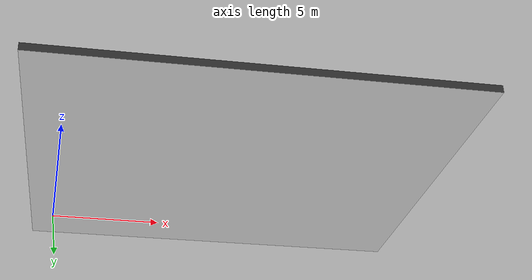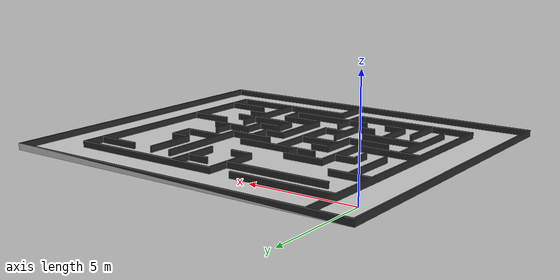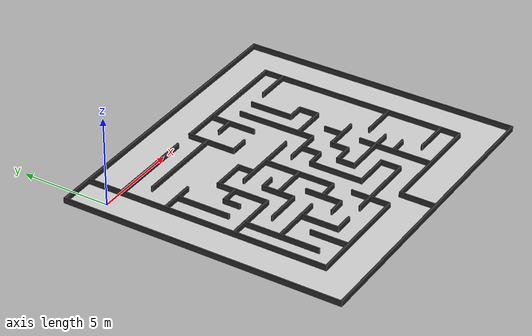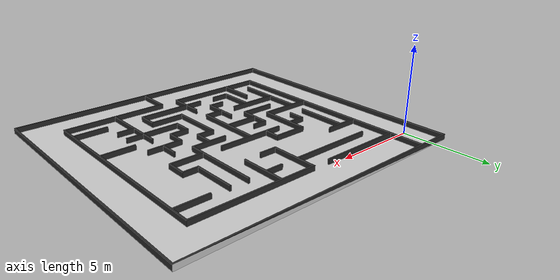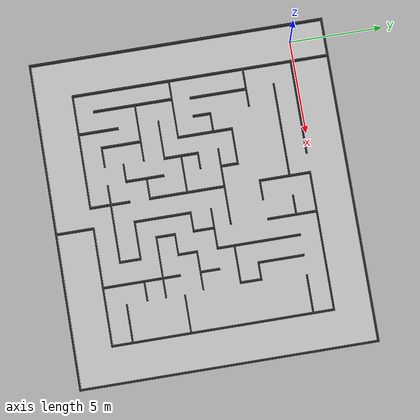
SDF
<?xml version='1.0'?>
<sdf version='1.5'>
  <model name="Maze">
    <static>true</static>

    <link name="body">
      <pose>1 -12 0 0 0 0</pose>
      <inertial>
        <pose>0 0 0 0 0 0</pose>
        <mass>5.0</mass>
        <inertia>
          <ixx>0.000465</ixx>
          <iyy>0.000707</iyy>
          <izz>0.000370</izz>
          <ixy>0</ixy>
          <ixz>0</ixz>
          <iyz>0</iyz>
        </inertia>
      </inertial>
      <visual name="visual">
        <pose>0 0 0 0 0 0</pose>
        <geometry>
          <mesh>
            <uri>model://maze/mesh/maze.dae</uri>
          </mesh>
        </geometry>
      </visual>
      <collision name="collision">
        <pose>0 0 0 0 0 0</pose>
        <geometry>
          <mesh>
            <uri>model://maze/mesh/maze.dae</uri>
          </mesh>
        </geometry>
      </collision>
    </link>
  </model>
</sdf>
